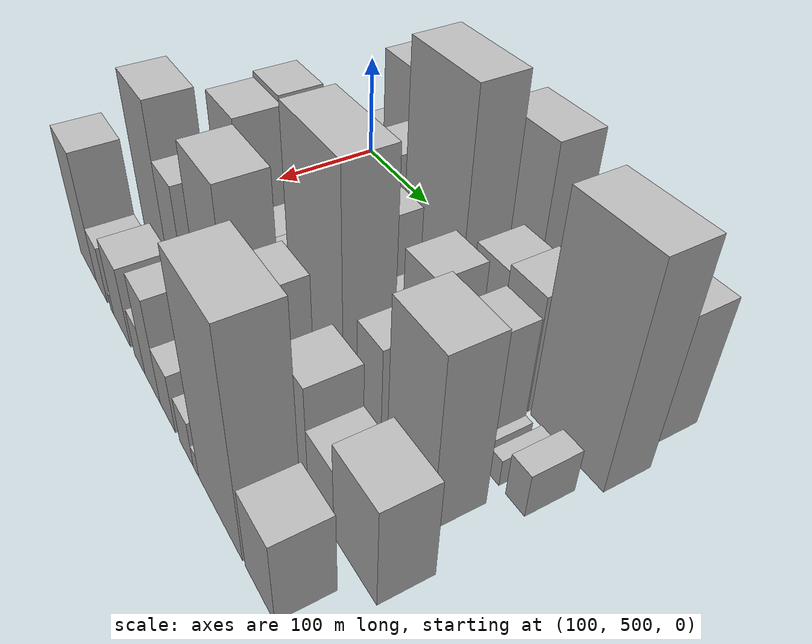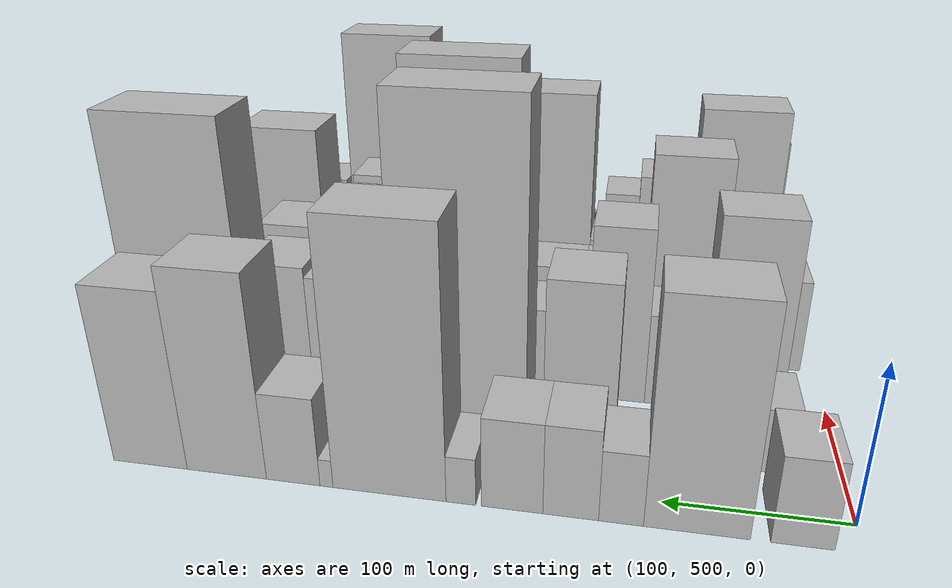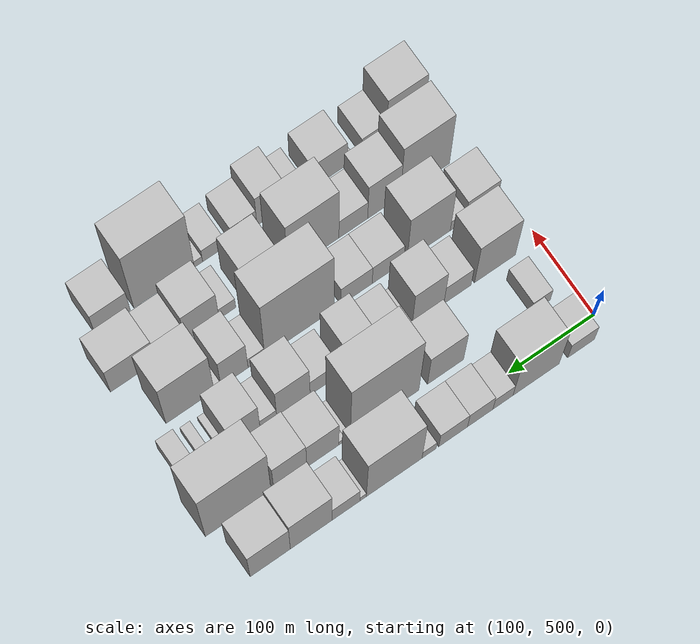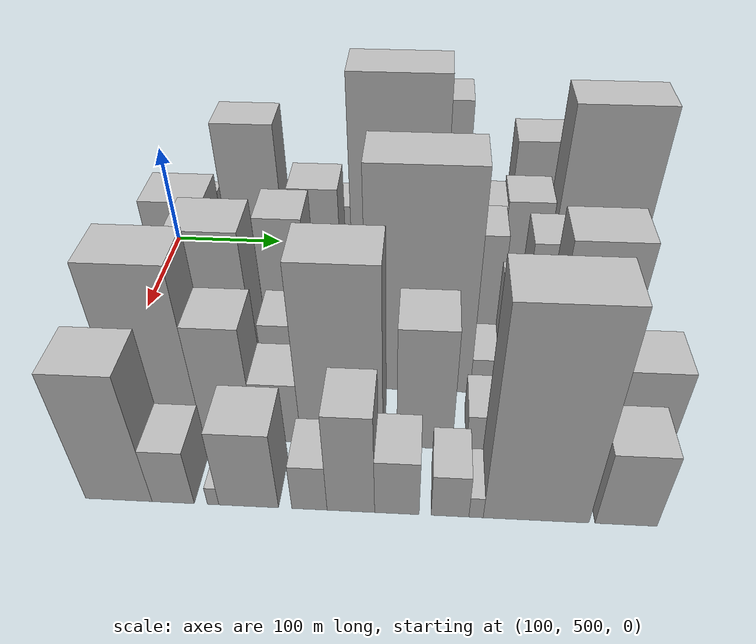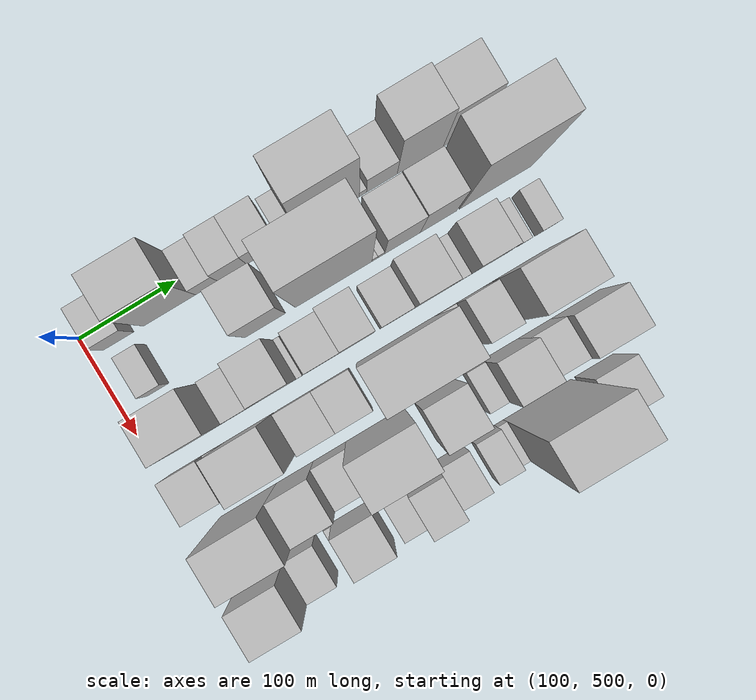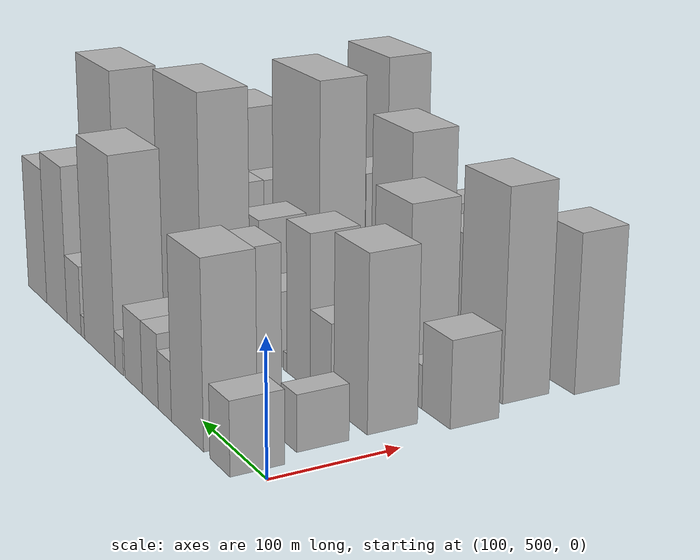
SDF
<sdf version="1.6">
 <world name="default">
  <model name="building_39">
   <static>1</static>
   <pose>100.0000 529.6292 0 0.000000 0.000000 0.000000</pose>
   <link name="link">
    <pose>0 0 27.00 0 0 0</pose>
    <collision name="collision"><geometry><box><size>40.0000 31.2812 54.0000</size></box></geometry></collision>
    <visual name="visual">
     <cast_shadows>0</cast_shadows>
     <geometry><box><size>40.0000 31.2812 54.0000</size></box></geometry>
     <material>
      <script>
       <uri>model://HANNAS_wall/materials/scripts</uri>
       <uri>model://HANNAS_wall/materials/textures</uri>
       <name>vrc/HANNAS_wall</name>
      </script>
     </material>
    </visual>
   </link>
  </model>
  <model name="building_40">
   <static>1</static>
   <pose>100.0000 582.1873 0 0.000000 0.000000 0.000000</pose>
   <link name="link">
    <pose>0 0 69.00 0 0 0</pose>
    <collision name="collision"><geometry><box><size>40.0000 53.8350 138.0000</size></box></geometry></collision>
    <visual name="visual">
     <cast_shadows>0</cast_shadows>
     <geometry><box><size>40.0000 53.8350 138.0000</size></box></geometry>
     <material>
      <script>
       <uri>model://HANNAS_wall/materials/scripts</uri>
       <uri>model://HANNAS_wall/materials/textures</uri>
       <name>vrc/HANNAS_wall</name>
      </script>
     </material>
    </visual>
   </link>
  </model>
  <model name="building_41">
   <static>1</static>
   <pose>100.0000 620.7428 0 0.000000 0.000000 0.000000</pose>
   <link name="link">
    <pose>0 0 22.50 0 0 0</pose>
    <collision name="collision"><geometry><box><size>40.0000 23.2760 45.0000</size></box></geometry></collision>
    <visual name="visual">
     <cast_shadows>0</cast_shadows>
     <geometry><box><size>40.0000 23.2760 45.0000</size></box></geometry>
     <material>
      <script>
       <uri>model://HANNAS_wall/materials/scripts</uri>
       <uri>model://HANNAS_wall/materials/textures</uri>
       <name>vrc/HANNAS_wall</name>
      </script>
     </material>
    </visual>
   </link>
  </model>
  <model name="building_42">
   <static>1</static>
   <pose>100.0000 647.1225 0 0.000000 0.000000 0.000000</pose>
   <link name="link">
    <pose>0 0 28.50 0 0 0</pose>
    <collision name="collision"><geometry><box><size>40.0000 29.4835 57.0000</size></box></geometry></collision>
    <visual name="visual">
     <cast_shadows>0</cast_shadows>
     <geometry><box><size>40.0000 29.4835 57.0000</size></box></geometry>
     <material>
      <script>
       <uri>model://HANNAS_wall/materials/scripts</uri>
       <uri>model://HANNAS_wall/materials/textures</uri>
       <name>vrc/HANNAS_wall</name>
      </script>
     </material>
    </visual>
   </link>
  </model>
  <model name="building_43">
   <static>1</static>
   <pose>100.0000 678.4469 0 0.000000 0.000000 0.000000</pose>
   <link name="link">
    <pose>0 0 28.50 0 0 0</pose>
    <collision name="collision"><geometry><box><size>40.0000 33.1653 57.0000</size></box></geometry></collision>
    <visual name="visual">
     <cast_shadows>0</cast_shadows>
     <geometry><box><size>40.0000 33.1653 57.0000</size></box></geometry>
     <material>
      <script>
       <uri>model://HANNAS_wall/materials/scripts</uri>
       <uri>model://HANNAS_wall/materials/textures</uri>
       <name>vrc/HANNAS_wall</name>
      </script>
     </material>
    </visual>
   </link>
  </model>
  <model name="building_44">
   <static>1</static>
   <pose>100.0000 706.1612 0 0.000000 0.000000 0.000000</pose>
   <link name="link">
    <pose>0 0 15.00 0 0 0</pose>
    <collision name="collision"><geometry><box><size>40.0000 16.2633 30.0000</size></box></geometry></collision>
    <visual name="visual">
     <cast_shadows>0</cast_shadows>
     <geometry><box><size>40.0000 16.2633 30.0000</size></box></geometry>
     <material>
      <script>
       <uri>model://HANNAS_wall/materials/scripts</uri>
       <uri>model://HANNAS_wall/materials/textures</uri>
       <name>vrc/HANNAS_wall</name>
      </script>
     </material>
    </visual>
   </link>
  </model>
  <model name="building_45">
   <static>1</static>
   <pose>100.0000 746.2240 0 0.000000 0.000000 0.000000</pose>
   <link name="link">
    <pose>0 0 82.50 0 0 0</pose>
    <collision name="collision"><geometry><box><size>40.0000 63.8623 165.0000</size></box></geometry></collision>
    <visual name="visual">
     <cast_shadows>0</cast_shadows>
     <geometry><box><size>40.0000 63.8623 165.0000</size></box></geometry>
     <material>
      <script>
       <uri>model://HANNAS_wall/materials/scripts</uri>
       <uri>model://HANNAS_wall/materials/textures</uri>
       <name>vrc/HANNAS_wall</name>
      </script>
     </material>
    </visual>
   </link>
  </model>
  <model name="building_46">
   <static>1</static>
   <pose>100.0000 781.9074 0 0.000000 0.000000 0.000000</pose>
   <link name="link">
    <pose>0 0 9.00 0 0 0</pose>
    <collision name="collision"><geometry><box><size>40.0000 7.5045 18.0000</size></box></geometry></collision>
    <visual name="visual">
     <cast_shadows>0</cast_shadows>
     <geometry><box><size>40.0000 7.5045 18.0000</size></box></geometry>
     <material>
      <script>
       <uri>model://HANNAS_wall/materials/scripts</uri>
       <uri>model://HANNAS_wall/materials/textures</uri>
       <name>vrc/HANNAS_wall</name>
      </script>
     </material>
    </visual>
   </link>
  </model>
  <model name="building_47">
   <static>1</static>
   <pose>100.0000 801.3336 0 0.000000 0.000000 0.000000</pose>
   <link name="link">
    <pose>0 0 28.50 0 0 0</pose>
    <collision name="collision"><geometry><box><size>40.0000 31.3480 57.0000</size></box></geometry></collision>
    <visual name="visual">
     <cast_shadows>0</cast_shadows>
     <geometry><box><size>40.0000 31.3480 57.0000</size></box></geometry>
     <material>
      <script>
       <uri>model://HANNAS_wall/materials/scripts</uri>
       <uri>model://HANNAS_wall/materials/textures</uri>
       <name>vrc/HANNAS_wall</name>
      </script>
     </material>
    </visual>
   </link>
  </model>
  <model name="building_48">
   <static>1</static>
   <pose>100.0000 840.8534 0 0.000000 0.000000 0.000000</pose>
   <link name="link">
    <pose>0 0 64.50 0 0 0</pose>
    <collision name="collision"><geometry><box><size>40.0000 47.6916 129.0000</size></box></geometry></collision>
    <visual name="visual">
     <cast_shadows>0</cast_shadows>
     <geometry><box><size>40.0000 47.6916 129.0000</size></box></geometry>
     <material>
      <script>
       <uri>model://HANNAS_wall/materials/scripts</uri>
       <uri>model://HANNAS_wall/materials/textures</uri>
       <name>vrc/HANNAS_wall</name>
      </script>
     </material>
    </visual>
   </link>
  </model>
  <model name="building_49">
   <static>1</static>
   <pose>100.0000 887.4541 0 0.000000 0.000000 0.000000</pose>
   <link name="link">
    <pose>0 0 57.00 0 0 0</pose>
    <collision name="collision"><geometry><box><size>40.0000 45.5097 114.0000</size></box></geometry></collision>
    <visual name="visual">
     <cast_shadows>0</cast_shadows>
     <geometry><box><size>40.0000 45.5097 114.0000</size></box></geometry>
     <material>
      <script>
       <uri>model://HANNAS_wall/materials/scripts</uri>
       <uri>model://HANNAS_wall/materials/textures</uri>
       <name>vrc/HANNAS_wall</name>
      </script>
     </material>
    </visual>
   </link>
  </model>
  <model name="building_92">
   <static>1</static>
   <pose>155.0000 537.2943 0 0.000000 0.000000 0.000000</pose>
   <link name="link">
    <pose>0 0 21.00 0 0 0</pose>
    <collision name="collision"><geometry><box><size>40.0000 22.5863 42.0000</size></box></geometry></collision>
    <visual name="visual">
     <cast_shadows>0</cast_shadows>
     <geometry><box><size>40.0000 22.5863 42.0000</size></box></geometry>
     <material>
      <script>
       <uri>model://HANNAS_wall/materials/scripts</uri>
       <uri>model://HANNAS_wall/materials/textures</uri>
       <name>vrc/HANNAS_wall</name>
      </script>
     </material>
    </visual>
   </link>
  </model>
  <model name="building_93">
   <static>1</static>
   <pose>155.0000 648.2580 0 0.000000 0.000000 0.000000</pose>
   <link name="link">
    <pose>0 0 55.50 0 0 0</pose>
    <collision name="collision"><geometry><box><size>40.0000 41.7804 111.0000</size></box></geometry></collision>
    <visual name="visual">
     <cast_shadows>0</cast_shadows>
     <geometry><box><size>40.0000 41.7804 111.0000</size></box></geometry>
     <material>
      <script>
       <uri>model://HANNAS_wall/materials/scripts</uri>
       <uri>model://HANNAS_wall/materials/textures</uri>
       <name>vrc/HANNAS_wall</name>
      </script>
     </material>
    </visual>
   </link>
  </model>
  <model name="building_94">
   <static>1</static>
   <pose>155.0000 718.6198 0 0.000000 0.000000 0.000000</pose>
   <link name="link">
    <pose>0 0 106.50 0 0 0</pose>
    <collision name="collision"><geometry><box><size>40.0000 78.9432 213.0000</size></box></geometry></collision>
    <visual name="visual">
     <cast_shadows>0</cast_shadows>
     <geometry><box><size>40.0000 78.9432 213.0000</size></box></geometry>
     <material>
      <script>
       <uri>model://HANNAS_wall/materials/scripts</uri>
       <uri>model://HANNAS_wall/materials/textures</uri>
       <name>vrc/HANNAS_wall</name>
      </script>
     </material>
    </visual>
   </link>
  </model>
  <model name="building_95">
   <static>1</static>
   <pose>155.0000 761.0976 0 0.000000 0.000000 0.000000</pose>
   <link name="link">
    <pose>0 0 7.50 0 0 0</pose>
    <collision name="collision"><geometry><box><size>40.0000 6.0125 15.0000</size></box></geometry></collision>
    <visual name="visual">
     <cast_shadows>0</cast_shadows>
     <geometry><box><size>40.0000 6.0125 15.0000</size></box></geometry>
     <material>
      <script>
       <uri>model://HANNAS_wall/materials/scripts</uri>
       <uri>model://HANNAS_wall/materials/textures</uri>
       <name>vrc/HANNAS_wall</name>
      </script>
     </material>
    </visual>
   </link>
  </model>
  <model name="building_96">
   <static>1</static>
   <pose>155.0000 767.6538 0 0.000000 0.000000 0.000000</pose>
   <link name="link">
    <pose>0 0 7.50 0 0 0</pose>
    <collision name="collision"><geometry><box><size>40.0000 7.1000 15.0000</size></box></geometry></collision>
    <visual name="visual">
     <cast_shadows>0</cast_shadows>
     <geometry><box><size>40.0000 7.1000 15.0000</size></box></geometry>
     <material>
      <script>
       <uri>model://HANNAS_wall/materials/scripts</uri>
       <uri>model://HANNAS_wall/materials/textures</uri>
       <name>vrc/HANNAS_wall</name>
      </script>
     </material>
    </visual>
   </link>
  </model>
  <model name="building_97">
   <static>1</static>
   <pose>155.0000 789.5611 0 0.000000 0.000000 0.000000</pose>
   <link name="link">
    <pose>0 0 49.50 0 0 0</pose>
    <collision name="collision"><geometry><box><size>40.0000 36.7146 99.0000</size></box></geometry></collision>
    <visual name="visual">
     <cast_shadows>0</cast_shadows>
     <geometry><box><size>40.0000 36.7146 99.0000</size></box></geometry>
     <material>
      <script>
       <uri>model://HANNAS_wall/materials/scripts</uri>
       <uri>model://HANNAS_wall/materials/textures</uri>
       <name>vrc/HANNAS_wall</name>
      </script>
     </material>
    </visual>
   </link>
  </model>
  <model name="building_98">
   <static>1</static>
   <pose>155.0000 826.7716 0 0.000000 0.000000 0.000000</pose>
   <link name="link">
    <pose>0 0 52.50 0 0 0</pose>
    <collision name="collision"><geometry><box><size>40.0000 37.7063 105.0000</size></box></geometry></collision>
    <visual name="visual">
     <cast_shadows>0</cast_shadows>
     <geometry><box><size>40.0000 37.7063 105.0000</size></box></geometry>
     <material>
      <script>
       <uri>model://HANNAS_wall/materials/scripts</uri>
       <uri>model://HANNAS_wall/materials/textures</uri>
       <name>vrc/HANNAS_wall</name>
      </script>
     </material>
    </visual>
   </link>
  </model>
  <model name="building_99">
   <static>1</static>
   <pose>155.0000 885.9366 0 0.000000 0.000000 0.000000</pose>
   <link name="link">
    <pose>0 0 96.00 0 0 0</pose>
    <collision name="collision"><geometry><box><size>40.0000 74.6237 192.0000</size></box></geometry></collision>
    <visual name="visual">
     <cast_shadows>0</cast_shadows>
     <geometry><box><size>40.0000 74.6237 192.0000</size></box></geometry>
     <material>
      <script>
       <uri>model://HANNAS_wall/materials/scripts</uri>
       <uri>model://HANNAS_wall/materials/textures</uri>
       <name>vrc/HANNAS_wall</name>
      </script>
     </material>
    </visual>
   </link>
  </model>
  <model name="building_140">
   <static>1</static>
   <pose>210.0000 551.4317 0 0.000000 0.000000 0.000000</pose>
   <link name="link">
    <pose>0 0 66.00 0 0 0</pose>
    <collision name="collision"><geometry><box><size>40.0000 47.9426 132.0000</size></box></geometry></collision>
    <visual name="visual">
     <cast_shadows>0</cast_shadows>
     <geometry><box><size>40.0000 47.9426 132.0000</size></box></geometry>
     <material>
      <script>
       <uri>model://HANNAS_wall/materials/scripts</uri>
       <uri>model://HANNAS_wall/materials/textures</uri>
       <name>vrc/HANNAS_wall</name>
      </script>
     </material>
    </visual>
   </link>
  </model>
  <model name="building_141">
   <static>1</static>
   <pose>210.0000 595.2494 0 0.000000 0.000000 0.000000</pose>
   <link name="link">
    <pose>0 0 31.50 0 0 0</pose>
    <collision name="collision"><geometry><box><size>40.0000 31.6929 63.0000</size></box></geometry></collision>
    <visual name="visual">
     <cast_shadows>0</cast_shadows>
     <geometry><box><size>40.0000 31.6929 63.0000</size></box></geometry>
     <material>
      <script>
       <uri>model://HANNAS_wall/materials/scripts</uri>
       <uri>model://HANNAS_wall/materials/textures</uri>
       <name>vrc/HANNAS_wall</name>
      </script>
     </material>
    </visual>
   </link>
  </model>
  <model name="building_142">
   <static>1</static>
   <pose>210.0000 629.6301 0 0.000000 0.000000 0.000000</pose>
   <link name="link">
    <pose>0 0 60.00 0 0 0</pose>
    <collision name="collision"><geometry><box><size>40.0000 37.0686 120.0000</size></box></geometry></collision>
    <visual name="visual">
     <cast_shadows>0</cast_shadows>
     <geometry><box><size>40.0000 37.0686 120.0000</size></box></geometry>
     <material>
      <script>
       <uri>model://HANNAS_wall/materials/scripts</uri>
       <uri>model://HANNAS_wall/materials/textures</uri>
       <name>vrc/HANNAS_wall</name>
      </script>
     </material>
    </visual>
   </link>
  </model>
  <model name="building_143">
   <static>1</static>
   <pose>210.0000 651.2036 0 0.000000 0.000000 0.000000</pose>
   <link name="link">
    <pose>0 0 7.50 0 0 0</pose>
    <collision name="collision"><geometry><box><size>40.0000 6.0784 15.0000</size></box></geometry></collision>
    <visual name="visual">
     <cast_shadows>0</cast_shadows>
     <geometry><box><size>40.0000 6.0784 15.0000</size></box></geometry>
     <material>
      <script>
       <uri>model://HANNAS_wall/materials/scripts</uri>
       <uri>model://HANNAS_wall/materials/textures</uri>
       <name>vrc/HANNAS_wall</name>
      </script>
     </material>
    </visual>
   </link>
  </model>
  <model name="building_144">
   <static>1</static>
   <pose>210.0000 675.9793 0 0.000000 0.000000 0.000000</pose>
   <link name="link">
    <pose>0 0 30.00 0 0 0</pose>
    <collision name="collision"><geometry><box><size>40.0000 35.4730 60.0000</size></box></geometry></collision>
    <visual name="visual">
     <cast_shadows>0</cast_shadows>
     <geometry><box><size>40.0000 35.4730 60.0000</size></box></geometry>
     <material>
      <script>
       <uri>model://HANNAS_wall/materials/scripts</uri>
       <uri>model://HANNAS_wall/materials/textures</uri>
       <name>vrc/HANNAS_wall</name>
      </script>
     </material>
    </visual>
   </link>
  </model>
  <model name="building_145">
   <static>1</static>
   <pose>210.0000 710.1157 0 0.000000 0.000000 0.000000</pose>
   <link name="link">
    <pose>0 0 52.50 0 0 0</pose>
    <collision name="collision"><geometry><box><size>40.0000 32.7998 105.0000</size></box></geometry></collision>
    <visual name="visual">
     <cast_shadows>0</cast_shadows>
     <geometry><box><size>40.0000 32.7998 105.0000</size></box></geometry>
     <material>
      <script>
       <uri>model://HANNAS_wall/materials/scripts</uri>
       <uri>model://HANNAS_wall/materials/textures</uri>
       <name>vrc/HANNAS_wall</name>
      </script>
     </material>
    </visual>
   </link>
  </model>
  <model name="building_146">
   <static>1</static>
   <pose>210.0000 749.7900 0 0.000000 0.000000 0.000000</pose>
   <link name="link">
    <pose>0 0 28.50 0 0 0</pose>
    <collision name="collision"><geometry><box><size>40.0000 32.5488 57.0000</size></box></geometry></collision>
    <visual name="visual">
     <cast_shadows>0</cast_shadows>
     <geometry><box><size>40.0000 32.5488 57.0000</size></box></geometry>
     <material>
      <script>
       <uri>model://HANNAS_wall/materials/scripts</uri>
       <uri>model://HANNAS_wall/materials/textures</uri>
       <name>vrc/HANNAS_wall</name>
      </script>
     </material>
    </visual>
   </link>
  </model>
  <model name="building_147">
   <static>1</static>
   <pose>210.0000 785.1862 0 0.000000 0.000000 0.000000</pose>
   <link name="link">
    <pose>0 0 55.50 0 0 0</pose>
    <collision name="collision"><geometry><box><size>40.0000 38.2434 111.0000</size></box></geometry></collision>
    <visual name="visual">
     <cast_shadows>0</cast_shadows>
     <geometry><box><size>40.0000 38.2434 111.0000</size></box></geometry>
     <material>
      <script>
       <uri>model://HANNAS_wall/materials/scripts</uri>
       <uri>model://HANNAS_wall/materials/textures</uri>
       <name>vrc/HANNAS_wall</name>
      </script>
     </material>
    </visual>
   </link>
  </model>
  <model name="building_148">
   <static>1</static>
   <pose>210.0000 813.8241 0 0.000000 0.000000 0.000000</pose>
   <link name="link">
    <pose>0 0 18.00 0 0 0</pose>
    <collision name="collision"><geometry><box><size>40.0000 19.0325 36.0000</size></box></geometry></collision>
    <visual name="visual">
     <cast_shadows>0</cast_shadows>
     <geometry><box><size>40.0000 19.0325 36.0000</size></box></geometry>
     <material>
      <script>
       <uri>model://HANNAS_wall/materials/scripts</uri>
       <uri>model://HANNAS_wall/materials/textures</uri>
       <name>vrc/HANNAS_wall</name>
      </script>
     </material>
    </visual>
   </link>
  </model>
  <model name="building_149">
   <static>1</static>
   <pose>210.0000 841.3857 0 0.000000 0.000000 0.000000</pose>
   <link name="link">
    <pose>0 0 52.50 0 0 0</pose>
    <collision name="collision"><geometry><box><size>40.0000 36.0906 105.0000</size></box></geometry></collision>
    <visual name="visual">
     <cast_shadows>0</cast_shadows>
     <geometry><box><size>40.0000 36.0906 105.0000</size></box></geometry>
     <material>
      <script>
       <uri>model://HANNAS_wall/materials/scripts</uri>
       <uri>model://HANNAS_wall/materials/textures</uri>
       <name>vrc/HANNAS_wall</name>
      </script>
     </material>
    </visual>
   </link>
  </model>
  <model name="building_150">
   <static>1</static>
   <pose>210.0000 863.2116 0 0.000000 0.000000 0.000000</pose>
   <link name="link">
    <pose>0 0 9.00 0 0 0</pose>
    <collision name="collision"><geometry><box><size>40.0000 7.5611 18.0000</size></box></geometry></collision>
    <visual name="visual">
     <cast_shadows>0</cast_shadows>
     <geometry><box><size>40.0000 7.5611 18.0000</size></box></geometry>
     <material>
      <script>
       <uri>model://HANNAS_wall/materials/scripts</uri>
       <uri>model://HANNAS_wall/materials/textures</uri>
       <name>vrc/HANNAS_wall</name>
      </script>
     </material>
    </visual>
   </link>
  </model>
  <model name="building_151">
   <static>1</static>
   <pose>210.0000 880.7290 0 0.000000 0.000000 0.000000</pose>
   <link name="link">
    <pose>0 0 12.00 0 0 0</pose>
    <collision name="collision"><geometry><box><size>40.0000 11.4738 24.0000</size></box></geometry></collision>
    <visual name="visual">
     <cast_shadows>0</cast_shadows>
     <geometry><box><size>40.0000 11.4738 24.0000</size></box></geometry>
     <material>
      <script>
       <uri>model://HANNAS_wall/materials/scripts</uri>
       <uri>model://HANNAS_wall/materials/textures</uri>
       <name>vrc/HANNAS_wall</name>
      </script>
     </material>
    </visual>
   </link>
  </model>
  <model name="building_152">
   <static>1</static>
   <pose>210.0000 903.2992 0 0.000000 0.000000 0.000000</pose>
   <link name="link">
    <pose>0 0 19.50 0 0 0</pose>
    <collision name="collision"><geometry><box><size>40.0000 19.6665 39.0000</size></box></geometry></collision>
    <visual name="visual">
     <cast_shadows>0</cast_shadows>
     <geometry><box><size>40.0000 19.6665 39.0000</size></box></geometry>
     <material>
      <script>
       <uri>model://HANNAS_wall/materials/scripts</uri>
       <uri>model://HANNAS_wall/materials/textures</uri>
       <name>vrc/HANNAS_wall</name>
      </script>
     </material>
    </visual>
   </link>
  </model>
  <model name="building_195">
   <static>1</static>
   <pose>265.0000 527.7412 0 0.000000 0.000000 0.000000</pose>
   <link name="link">
    <pose>0 0 33.00 0 0 0</pose>
    <collision name="collision"><geometry><box><size>40.0000 37.6508 66.0000</size></box></geometry></collision>
    <visual name="visual">
     <cast_shadows>0</cast_shadows>
     <geometry><box><size>40.0000 37.6508 66.0000</size></box></geometry>
     <material>
      <script>
       <uri>model://HANNAS_wall/materials/scripts</uri>
       <uri>model://HANNAS_wall/materials/textures</uri>
       <name>vrc/HANNAS_wall</name>
      </script>
     </material>
    </visual>
   </link>
  </model>
  <model name="building_196">
   <static>1</static>
   <pose>265.0000 555.6665 0 0.000000 0.000000 0.000000</pose>
   <link name="link">
    <pose>0 0 16.50 0 0 0</pose>
    <collision name="collision"><geometry><box><size>40.0000 18.1998 33.0000</size></box></geometry></collision>
    <visual name="visual">
     <cast_shadows>0</cast_shadows>
     <geometry><box><size>40.0000 18.1998 33.0000</size></box></geometry>
     <material>
      <script>
       <uri>model://HANNAS_wall/materials/scripts</uri>
       <uri>model://HANNAS_wall/materials/textures</uri>
       <name>vrc/HANNAS_wall</name>
      </script>
     </material>
    </visual>
   </link>
  </model>
  <model name="building_197">
   <static>1</static>
   <pose>265.0000 589.9989 0 0.000000 0.000000 0.000000</pose>
   <link name="link">
    <pose>0 0 73.50 0 0 0</pose>
    <collision name="collision"><geometry><box><size>40.0000 50.4650 147.0000</size></box></geometry></collision>
    <visual name="visual">
     <cast_shadows>0</cast_shadows>
     <geometry><box><size>40.0000 50.4650 147.0000</size></box></geometry>
     <material>
      <script>
       <uri>model://HANNAS_wall/materials/scripts</uri>
       <uri>model://HANNAS_wall/materials/textures</uri>
       <name>vrc/HANNAS_wall</name>
      </script>
     </material>
    </visual>
   </link>
  </model>
  <model name="building_198">
   <static>1</static>
   <pose>265.0000 637.6387 0 0.000000 0.000000 0.000000</pose>
   <link name="link">
    <pose>0 0 31.50 0 0 0</pose>
    <collision name="collision"><geometry><box><size>40.0000 36.8145 63.0000</size></box></geometry></collision>
    <visual name="visual">
     <cast_shadows>0</cast_shadows>
     <geometry><box><size>40.0000 36.8145 63.0000</size></box></geometry>
     <material>
      <script>
       <uri>model://HANNAS_wall/materials/scripts</uri>
       <uri>model://HANNAS_wall/materials/textures</uri>
       <name>vrc/HANNAS_wall</name>
      </script>
     </material>
    </visual>
   </link>
  </model>
  <model name="building_199">
   <static>1</static>
   <pose>265.0000 674.1736 0 0.000000 0.000000 0.000000</pose>
   <link name="link">
    <pose>0 0 31.50 0 0 0</pose>
    <collision name="collision"><geometry><box><size>40.0000 36.2553 63.0000</size></box></geometry></collision>
    <visual name="visual">
     <cast_shadows>0</cast_shadows>
     <geometry><box><size>40.0000 36.2553 63.0000</size></box></geometry>
     <material>
      <script>
       <uri>model://HANNAS_wall/materials/scripts</uri>
       <uri>model://HANNAS_wall/materials/textures</uri>
       <name>vrc/HANNAS_wall</name>
      </script>
     </material>
    </visual>
   </link>
  </model>
  <model name="building_200">
   <static>1</static>
   <pose>265.0000 740.2533 0 0.000000 0.000000 0.000000</pose>
   <link name="link">
    <pose>0 0 102.00 0 0 0</pose>
    <collision name="collision"><geometry><box><size>40.0000 79.9043 204.0000</size></box></geometry></collision>
    <visual name="visual">
     <cast_shadows>0</cast_shadows>
     <geometry><box><size>40.0000 79.9043 204.0000</size></box></geometry>
     <material>
      <script>
       <uri>model://HANNAS_wall/materials/scripts</uri>
       <uri>model://HANNAS_wall/materials/textures</uri>
       <name>vrc/HANNAS_wall</name>
      </script>
     </material>
    </visual>
   </link>
  </model>
  <model name="building_201">
   <static>1</static>
   <pose>265.0000 789.7837 0 0.000000 0.000000 0.000000</pose>
   <link name="link">
    <pose>0 0 18.00 0 0 0</pose>
    <collision name="collision"><geometry><box><size>40.0000 19.1564 36.0000</size></box></geometry></collision>
    <visual name="visual">
     <cast_shadows>0</cast_shadows>
     <geometry><box><size>40.0000 19.1564 36.0000</size></box></geometry>
     <material>
      <script>
       <uri>model://HANNAS_wall/materials/scripts</uri>
       <uri>model://HANNAS_wall/materials/textures</uri>
       <name>vrc/HANNAS_wall</name>
      </script>
     </material>
    </visual>
   </link>
  </model>
  <model name="building_202">
   <static>1</static>
   <pose>265.0000 814.9171 0 0.000000 0.000000 0.000000</pose>
   <link name="link">
    <pose>0 0 49.50 0 0 0</pose>
    <collision name="collision"><geometry><box><size>40.0000 31.1105 99.0000</size></box></geometry></collision>
    <visual name="visual">
     <cast_shadows>0</cast_shadows>
     <geometry><box><size>40.0000 31.1105 99.0000</size></box></geometry>
     <material>
      <script>
       <uri>model://HANNAS_wall/materials/scripts</uri>
       <uri>model://HANNAS_wall/materials/textures</uri>
       <name>vrc/HANNAS_wall</name>
      </script>
     </material>
    </visual>
   </link>
  </model>
  <model name="building_203">
   <static>1</static>
   <pose>265.0000 834.4006 0 0.000000 0.000000 0.000000</pose>
   <link name="link">
    <pose>0 0 9.00 0 0 0</pose>
    <collision name="collision"><geometry><box><size>40.0000 7.8565 18.0000</size></box></geometry></collision>
    <visual name="visual">
     <cast_shadows>0</cast_shadows>
     <geometry><box><size>40.0000 7.8565 18.0000</size></box></geometry>
     <material>
      <script>
       <uri>model://HANNAS_wall/materials/scripts</uri>
       <uri>model://HANNAS_wall/materials/textures</uri>
       <name>vrc/HANNAS_wall</name>
      </script>
     </material>
    </visual>
   </link>
  </model>
  <model name="building_204">
   <static>1</static>
   <pose>265.0000 865.8285 0 0.000000 0.000000 0.000000</pose>
   <link name="link">
    <pose>0 0 75.00 0 0 0</pose>
    <collision name="collision"><geometry><box><size>40.0000 54.9993 150.0000</size></box></geometry></collision>
    <visual name="visual">
     <cast_shadows>0</cast_shadows>
     <geometry><box><size>40.0000 54.9993 150.0000</size></box></geometry>
     <material>
      <script>
       <uri>model://HANNAS_wall/materials/scripts</uri>
       <uri>model://HANNAS_wall/materials/textures</uri>
       <name>vrc/HANNAS_wall</name>
      </script>
     </material>
    </visual>
   </link>
  </model>
  <model name="building_246">
   <static>1</static>
   <pose>320.0000 555.5711 0 0.000000 0.000000 0.000000</pose>
   <link name="link">
    <pose>0 0 81.00 0 0 0</pose>
    <collision name="collision"><geometry><box><size>40.0000 57.6582 162.0000</size></box></geometry></collision>
    <visual name="visual">
     <cast_shadows>0</cast_shadows>
     <geometry><box><size>40.0000 57.6582 162.0000</size></box></geometry>
     <material>
      <script>
       <uri>model://HANNAS_wall/materials/scripts</uri>
       <uri>model://HANNAS_wall/materials/textures</uri>
       <name>vrc/HANNAS_wall</name>
      </script>
     </material>
    </visual>
   </link>
  </model>
  <model name="building_247">
   <static>1</static>
   <pose>320.0000 603.5919 0 0.000000 0.000000 0.000000</pose>
   <link name="link">
    <pose>0 0 55.50 0 0 0</pose>
    <collision name="collision"><geometry><box><size>40.0000 38.3833 111.0000</size></box></geometry></collision>
    <visual name="visual">
     <cast_shadows>0</cast_shadows>
     <geometry><box><size>40.0000 38.3833 111.0000</size></box></geometry>
     <material>
      <script>
       <uri>model://HANNAS_wall/materials/scripts</uri>
       <uri>model://HANNAS_wall/materials/textures</uri>
       <name>vrc/HANNAS_wall</name>
      </script>
     </material>
    </visual>
   </link>
  </model>
  <model name="building_248">
   <static>1</static>
   <pose>320.0000 639.5264 0 0.000000 0.000000 0.000000</pose>
   <link name="link">
    <pose>0 0 30.00 0 0 0</pose>
    <collision name="collision"><geometry><box><size>40.0000 33.4858 60.0000</size></box></geometry></collision>
    <visual name="visual">
     <cast_shadows>0</cast_shadows>
     <geometry><box><size>40.0000 33.4858 60.0000</size></box></geometry>
     <material>
      <script>
       <uri>model://HANNAS_wall/materials/scripts</uri>
       <uri>model://HANNAS_wall/materials/textures</uri>
       <name>vrc/HANNAS_wall</name>
      </script>
     </material>
    </visual>
   </link>
  </model>
  <model name="building_249">
   <static>1</static>
   <pose>320.0000 686.0955 0 0.000000 0.000000 0.000000</pose>
   <link name="link">
    <pose>0 0 84.00 0 0 0</pose>
    <collision name="collision"><geometry><box><size>40.0000 59.6523 168.0000</size></box></geometry></collision>
    <visual name="visual">
     <cast_shadows>0</cast_shadows>
     <geometry><box><size>40.0000 59.6523 168.0000</size></box></geometry>
     <material>
      <script>
       <uri>model://HANNAS_wall/materials/scripts</uri>
       <uri>model://HANNAS_wall/materials/textures</uri>
       <name>vrc/HANNAS_wall</name>
      </script>
     </material>
    </visual>
   </link>
  </model>
  <model name="building_250">
   <static>1</static>
   <pose>320.0000 745.9190 0 0.000000 0.000000 0.000000</pose>
   <link name="link">
    <pose>0 0 58.50 0 0 0</pose>
    <collision name="collision"><geometry><box><size>40.0000 39.9948 117.0000</size></box></geometry></collision>
    <visual name="visual">
     <cast_shadows>0</cast_shadows>
     <geometry><box><size>40.0000 39.9948 117.0000</size></box></geometry>
     <material>
      <script>
       <uri>model://HANNAS_wall/materials/scripts</uri>
       <uri>model://HANNAS_wall/materials/textures</uri>
       <name>vrc/HANNAS_wall</name>
      </script>
     </material>
    </visual>
   </link>
  </model>
  <model name="building_251">
   <static>1</static>
   <pose>320.0000 785.4596 0 0.000000 0.000000 0.000000</pose>
   <link name="link">
    <pose>0 0 18.00 0 0 0</pose>
    <collision name="collision"><geometry><box><size>40.0000 19.0863 36.0000</size></box></geometry></collision>
    <visual name="visual">
     <cast_shadows>0</cast_shadows>
     <geometry><box><size>40.0000 19.0863 36.0000</size></box></geometry>
     <material>
      <script>
       <uri>model://HANNAS_wall/materials/scripts</uri>
       <uri>model://HANNAS_wall/materials/textures</uri>
       <name>vrc/HANNAS_wall</name>
      </script>
     </material>
    </visual>
   </link>
  </model>
  <model name="building_252">
   <static>1</static>
   <pose>320.0000 814.5618 0 0.000000 0.000000 0.000000</pose>
   <link name="link">
    <pose>0 0 49.50 0 0 0</pose>
    <collision name="collision"><geometry><box><size>40.0000 39.1181 99.0000</size></box></geometry></collision>
    <visual name="visual">
     <cast_shadows>0</cast_shadows>
     <geometry><box><size>40.0000 39.1181 99.0000</size></box></geometry>
     <material>
      <script>
       <uri>model://HANNAS_wall/materials/scripts</uri>
       <uri>model://HANNAS_wall/materials/textures</uri>
       <name>vrc/HANNAS_wall</name>
      </script>
     </material>
    </visual>
   </link>
  </model>
  <model name="building_253">
   <static>1</static>
   <pose>320.0000 851.1757 0 0.000000 0.000000 0.000000</pose>
   <link name="link">
    <pose>0 0 31.50 0 0 0</pose>
    <collision name="collision"><geometry><box><size>40.0000 34.1096 63.0000</size></box></geometry></collision>
    <visual name="visual">
     <cast_shadows>0</cast_shadows>
     <geometry><box><size>40.0000 34.1096 63.0000</size></box></geometry>
     <material>
      <script>
       <uri>model://HANNAS_wall/materials/scripts</uri>
       <uri>model://HANNAS_wall/materials/textures</uri>
       <name>vrc/HANNAS_wall</name>
      </script>
     </material>
    </visual>
   </link>
  </model>
  <model name="building_254">
   <static>1</static>
   <pose>320.0000 893.8357 0 0.000000 0.000000 0.000000</pose>
   <link name="link">
    <pose>0 0 43.50 0 0 0</pose>
    <collision name="collision"><geometry><box><size>40.0000 51.2106 87.0000</size></box></geometry></collision>
    <visual name="visual">
     <cast_shadows>0</cast_shadows>
     <geometry><box><size>40.0000 51.2106 87.0000</size></box></geometry>
     <material>
      <script>
       <uri>model://HANNAS_wall/materials/scripts</uri>
       <uri>model://HANNAS_wall/materials/textures</uri>
       <name>vrc/HANNAS_wall</name>
      </script>
     </material>
    </visual>
   </link>
  </model>
  <model name="building_299">
   <static>1</static>
   <pose>375.0000 539.5988 0 0.000000 0.000000 0.000000</pose>
   <link name="link">
    <pose>0 0 61.50 0 0 0</pose>
    <collision name="collision"><geometry><box><size>40.0000 45.9555 123.0000</size></box></geometry></collision>
    <visual name="visual">
     <cast_shadows>0</cast_shadows>
     <geometry><box><size>40.0000 45.9555 123.0000</size></box></geometry>
     <material>
      <script>
       <uri>model://HANNAS_wall/materials/scripts</uri>
       <uri>model://HANNAS_wall/materials/textures</uri>
       <name>vrc/HANNAS_wall</name>
      </script>
     </material>
    </visual>
   </link>
  </model>
  <model name="building_300">
   <static>1</static>
   <pose>375.0000 577.0294 0 0.000000 0.000000 0.000000</pose>
   <link name="link">
    <pose>0 0 27.00 0 0 0</pose>
    <collision name="collision"><geometry><box><size>40.0000 28.9058 54.0000</size></box></geometry></collision>
    <visual name="visual">
     <cast_shadows>0</cast_shadows>
     <geometry><box><size>40.0000 28.9058 54.0000</size></box></geometry>
     <material>
      <script>
       <uri>model://HANNAS_wall/materials/scripts</uri>
       <uri>model://HANNAS_wall/materials/textures</uri>
       <name>vrc/HANNAS_wall</name>
      </script>
     </material>
    </visual>
   </link>
  </model>
  <model name="building_301">
   <static>1</static>
   <pose>375.0000 604.3785 0 0.000000 0.000000 0.000000</pose>
   <link name="link">
    <pose>0 0 9.00 0 0 0</pose>
    <collision name="collision"><geometry><box><size>40.0000 7.7924 18.0000</size></box></geometry></collision>
    <visual name="visual">
     <cast_shadows>0</cast_shadows>
     <geometry><box><size>40.0000 7.7924 18.0000</size></box></geometry>
     <material>
      <script>
       <uri>model://HANNAS_wall/materials/scripts</uri>
       <uri>model://HANNAS_wall/materials/textures</uri>
       <name>vrc/HANNAS_wall</name>
      </script>
     </material>
    </visual>
   </link>
  </model>
  <model name="building_302">
   <static>1</static>
   <pose>375.0000 628.6016 0 0.000000 0.000000 0.000000</pose>
   <link name="link">
    <pose>0 0 37.50 0 0 0</pose>
    <collision name="collision"><geometry><box><size>40.0000 40.6536 75.0000</size></box></geometry></collision>
    <visual name="visual">
     <cast_shadows>0</cast_shadows>
     <geometry><box><size>40.0000 40.6536 75.0000</size></box></geometry>
     <material>
      <script>
       <uri>model://HANNAS_wall/materials/scripts</uri>
       <uri>model://HANNAS_wall/materials/textures</uri>
       <name>vrc/HANNAS_wall</name>
      </script>
     </material>
    </visual>
   </link>
  </model>
  <model name="building_303">
   <static>1</static>
   <pose>375.0000 669.8355 0 0.000000 0.000000 0.000000</pose>
   <link name="link">
    <pose>0 0 22.50 0 0 0</pose>
    <collision name="collision"><geometry><box><size>40.0000 23.8142 45.0000</size></box></geometry></collision>
    <visual name="visual">
     <cast_shadows>0</cast_shadows>
     <geometry><box><size>40.0000 23.8142 45.0000</size></box></geometry>
     <material>
      <script>
       <uri>model://HANNAS_wall/materials/scripts</uri>
       <uri>model://HANNAS_wall/materials/textures</uri>
       <name>vrc/HANNAS_wall</name>
      </script>
     </material>
    </visual>
   </link>
  </model>
  <model name="building_304">
   <static>1</static>
   <pose>375.0000 697.7293 0 0.000000 0.000000 0.000000</pose>
   <link name="link">
    <pose>0 0 48.00 0 0 0</pose>
    <collision name="collision"><geometry><box><size>40.0000 31.9735 96.0000</size></box></geometry></collision>
    <visual name="visual">
     <cast_shadows>0</cast_shadows>
     <geometry><box><size>40.0000 31.9735 96.0000</size></box></geometry>
     <material>
      <script>
       <uri>model://HANNAS_wall/materials/scripts</uri>
       <uri>model://HANNAS_wall/materials/textures</uri>
       <name>vrc/HANNAS_wall</name>
      </script>
     </material>
    </visual>
   </link>
  </model>
  <model name="building_305">
   <static>1</static>
   <pose>375.0000 728.6030 0 0.000000 0.000000 0.000000</pose>
   <link name="link">
    <pose>0 0 27.00 0 0 0</pose>
    <collision name="collision"><geometry><box><size>40.0000 29.7737 54.0000</size></box></geometry></collision>
    <visual name="visual">
     <cast_shadows>0</cast_shadows>
     <geometry><box><size>40.0000 29.7737 54.0000</size></box></geometry>
     <material>
      <script>
       <uri>model://HANNAS_wall/materials/scripts</uri>
       <uri>model://HANNAS_wall/materials/textures</uri>
       <name>vrc/HANNAS_wall</name>
      </script>
     </material>
    </visual>
   </link>
  </model>
  <model name="building_306">
   <static>1</static>
   <pose>375.0000 764.0488 0 0.000000 0.000000 0.000000</pose>
   <link name="link">
    <pose>0 0 21.00 0 0 0</pose>
    <collision name="collision"><geometry><box><size>40.0000 25.1179 42.0000</size></box></geometry></collision>
    <visual name="visual">
     <cast_shadows>0</cast_shadows>
     <geometry><box><size>40.0000 25.1179 42.0000</size></box></geometry>
     <material>
      <script>
       <uri>model://HANNAS_wall/materials/scripts</uri>
       <uri>model://HANNAS_wall/materials/textures</uri>
       <name>vrc/HANNAS_wall</name>
      </script>
     </material>
    </visual>
   </link>
  </model>
  <model name="building_307">
   <static>1</static>
   <pose>375.0000 781.3589 0 0.000000 0.000000 0.000000</pose>
   <link name="link">
    <pose>0 0 10.50 0 0 0</pose>
    <collision name="collision"><geometry><box><size>40.0000 9.5022 21.0000</size></box></geometry></collision>
    <visual name="visual">
     <cast_shadows>0</cast_shadows>
     <geometry><box><size>40.0000 9.5022 21.0000</size></box></geometry>
     <material>
      <script>
       <uri>model://HANNAS_wall/materials/scripts</uri>
       <uri>model://HANNAS_wall/materials/textures</uri>
       <name>vrc/HANNAS_wall</name>
      </script>
     </material>
    </visual>
   </link>
  </model>
  <model name="building_308">
   <static>1</static>
   <pose>375.0000 820.9495 0 0.000000 0.000000 0.000000</pose>
   <link name="link">
    <pose>0 0 96.00 0 0 0</pose>
    <collision name="collision"><geometry><box><size>40.0000 69.6791 192.0000</size></box></geometry></collision>
    <visual name="visual">
     <cast_shadows>0</cast_shadows>
     <geometry><box><size>40.0000 69.6791 192.0000</size></box></geometry>
     <material>
      <script>
       <uri>model://HANNAS_wall/materials/scripts</uri>
       <uri>model://HANNAS_wall/materials/textures</uri>
       <name>vrc/HANNAS_wall</name>
      </script>
     </material>
    </visual>
   </link>
  </model>
  <model name="building_309">
   <static>1</static>
   <pose>375.0000 880.0148 0 0.000000 0.000000 0.000000</pose>
   <link name="link">
    <pose>0 0 36.00 0 0 0</pose>
    <collision name="collision"><geometry><box><size>40.0000 40.4514 72.0000</size></box></geometry></collision>
    <visual name="visual">
     <cast_shadows>0</cast_shadows>
     <geometry><box><size>40.0000 40.4514 72.0000</size></box></geometry>
     <material>
      <script>
       <uri>model://HANNAS_wall/materials/scripts</uri>
       <uri>model://HANNAS_wall/materials/textures</uri>
       <name>vrc/HANNAS_wall</name>
      </script>
     </material>
    </visual>
   </link>
  </model>
 </world>
</sdf>
